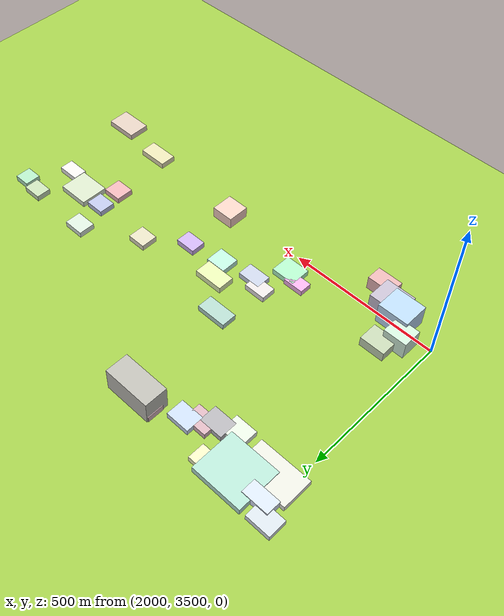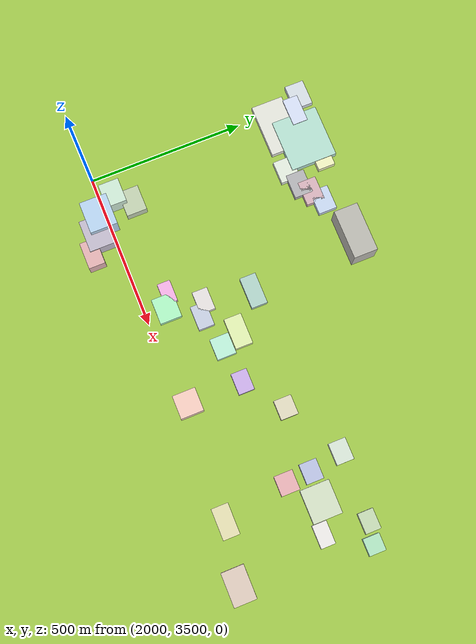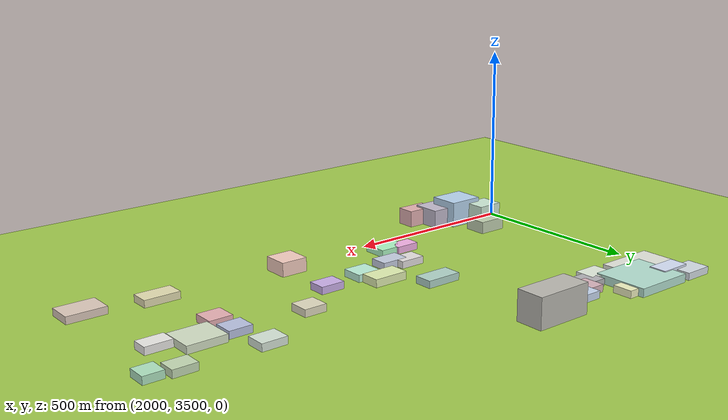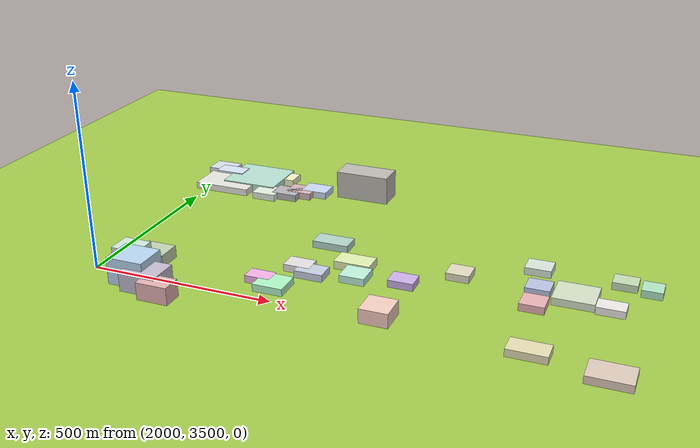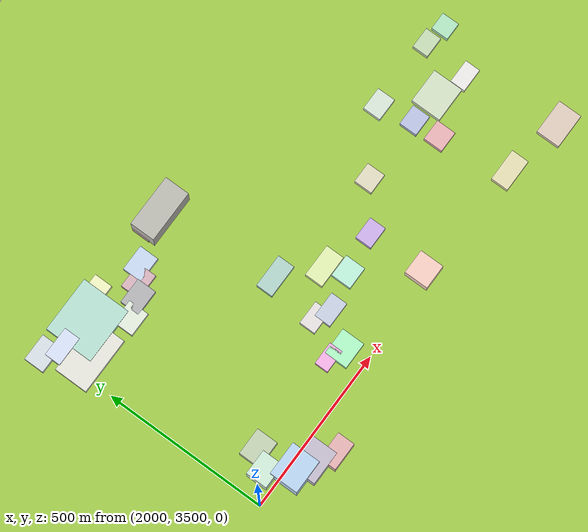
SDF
<sdf version="1.9">
 <world name="city_map">
  <model name="ground_plane">
   <static>1</static>
   <link name="link">
    <collision name="collision">
     <geometry><plane><normal>0 0 1</normal><size>11000 11000</size></plane></geometry>
    </collision>
    <visual name="visual">
     <geometry><plane><normal>0 0 1</normal><size>11000 11000</size></plane></geometry>
     <material>
      <ambient>0.551 0.712 0.210 1</ambient>
      <diffuse>0.651 0.812 0.310 1</diffuse>
      <specular>0.1 0.1 0.05 1</specular>
     </material>
    </visual>
   </link>
  </model>
  <model name="building_284266173">
   <static>1</static>
   <pose>2125.572420813941 4172.171751800805 11.58540077558591 0 0 0</pose>
   <link name="link">
    <collision name="collision">
     <geometry><box><size>169.2633467777734 148.97309999945918 23.17080155117182</size></box></geometry>
    </collision>
    <visual name="visual">
     <cast_shadows>false</cast_shadows>
     <geometry><box><size>169.2633467777734 148.97309999945918 23.17080155117182</size></box></geometry>
     <material>
      <ambient>0.629 0.802 0.742 1</ambient>
      <diffuse>0.729 0.902 0.842 1</diffuse>
      <specular>0.219 0.270 0.253 1</specular>
      <emissive>0.01 0.01 0.01 1</emissive>
     </material>
    </visual>
   </link>
  </model>
  <model name="building_702100110">
   <static>1</static>
   <pose>2053.364790413407 4109.723367642992 10.0 0 0 0</pose>
   <link name="link">
    <collision name="collision">
     <geometry><box><size>171.38454744872334 102.76379999971397 20</size></box></geometry>
    </collision>
    <visual name="visual">
     <cast_shadows>false</cast_shadows>
     <geometry><box><size>171.38454744872334 102.76379999971397 20</size></box></geometry>
     <material>
      <ambient>0.819 0.823 0.786 1</ambient>
      <diffuse>0.919 0.923 0.886 1</diffuse>
      <specular>0.276 0.277 0.266 1</specular>
      <emissive>0.01 0.01 0.01 1</emissive>
     </material>
    </visual>
   </link>
  </model>
  <model name="building_254292448">
   <static>1</static>
   <pose>2478.762335851394 4190.439232062341 40.729888527438476 0 0 0</pose>
   <link name="link">
    <collision name="collision">
     <geometry><box><size>158.18609999985966 76.45900496529083 81.45977705487695</size></box></geometry>
    </collision>
    <visual name="visual">
     <cast_shadows>false</cast_shadows>
     <geometry><box><size>158.18609999985966 76.45900496529083 81.45977705487695</size></box></geometry>
     <material>
      <ambient>0.651 0.645 0.614 1</ambient>
      <diffuse>0.751 0.745 0.714 1</diffuse>
      <specular>0.225 0.223 0.214 1</specular>
      <emissive>0.01 0.01 0.01 1</emissive>
     </material>
    </visual>
   </link>
  </model>
  <model name="building_401690446">
   <static>1</static>
   <pose>3190.5976131831026 3779.7376879083363 10.0 0 0 0</pose>
   <link name="link">
    <collision name="collision">
     <geometry><box><size>105.84959999949461 92.80482700679157 20</size></box></geometry>
    </collision>
    <visual name="visual">
     <cast_shadows>false</cast_shadows>
     <geometry><box><size>105.84959999949461 92.80482700679157 20</size></box></geometry>
     <material>
      <ambient>0.752 0.803 0.697 1</ambient>
      <diffuse>0.852 0.903 0.797 1</diffuse>
      <specular>0.256 0.271 0.239 1</specular>
      <emissive>0.01 0.01 0.01 1</emissive>
     </material>
    </visual>
   </link>
  </model>
  <model name="building_175058334">
   <static>1</static>
   <pose>2131.026050682545 3481.3419130546918 36.713336326694815 0 0 0</pose>
   <link name="link">
    <collision name="collision">
     <geometry><box><size>102.47519999949617 87.43797445727881 73.42667265338963</size></box></geometry>
    </collision>
    <visual name="visual">
     <cast_shadows>false</cast_shadows>
     <geometry><box><size>102.47519999949617 87.43797445727881 73.42667265338963</size></box></geometry>
     <material>
      <ambient>0.641 0.758 0.866 1</ambient>
      <diffuse>0.741 0.858 0.966 1</diffuse>
      <specular>0.222 0.257 0.290 1</specular>
      <emissive>0.01 0.01 0.01 1</emissive>
     </material>
    </visual>
   </link>
  </model>
  <model name="building_783604804">
   <static>1</static>
   <pose>2179.63487689111 3457.0064863760895 26.166622064880798 0 0 0</pose>
   <link name="link">
    <collision name="collision">
     <geometry><box><size>101.94240000036814 83.63844412613756 52.333244129761596</size></box></geometry>
    </collision>
    <visual name="visual">
     <cast_shadows>false</cast_shadows>
     <geometry><box><size>101.94240000036814 83.63844412613756 52.333244129761596</size></box></geometry>
     <material>
      <ambient>0.683 0.652 0.725 1</ambient>
      <diffuse>0.783 0.752 0.825 1</diffuse>
      <specular>0.235 0.226 0.248 1</specular>
      <emissive>0.01 0.01 0.01 1</emissive>
     </material>
    </visual>
   </link>
  </model>
  <model name="building_157431127">
   <static>1</static>
   <pose>3322.934500056801 3463.9114081850757 10.0 0 0 0</pose>
   <link name="link">
    <collision name="collision">
     <geometry><box><size>106.29598627770082 72.24990000040776 20</size></box></geometry>
    </collision>
    <visual name="visual">
     <cast_shadows>false</cast_shadows>
     <geometry><box><size>106.29598627770082 72.24990000040776 20</size></box></geometry>
     <material>
      <ambient>0.791 0.715 0.657 1</ambient>
      <diffuse>0.891 0.815 0.757 1</diffuse>
      <specular>0.267 0.245 0.227 1</specular>
      <emissive>0.01 0.01 0.01 1</emissive>
     </material>
    </visual>
   </link>
  </model>
  <model name="building_342881581">
   <static>1</static>
   <pose>2474.9041811368984 3568.619874581045 10.0 0 0 0</pose>
   <link name="link">
    <collision name="collision">
     <geometry><box><size>81.12990000007159 70.09080791989949 20</size></box></geometry>
    </collision>
    <visual name="visual">
     <cast_shadows>false</cast_shadows>
     <geometry><box><size>81.12990000007159 70.09080791989949 20</size></box></geometry>
     <material>
      <ambient>0.605 0.893 0.691 1</ambient>
      <diffuse>0.705 0.993 0.791 1</diffuse>
      <specular>0.212 0.298 0.237 1</specular>
      <emissive>0.01 0.01 0.01 1</emissive>
     </material>
    </visual>
   </link>
  </model>
  <model name="building_57095839">
   <static>1</static>
   <pose>2624.1989131024716 3745.4214364307627 11.074956299807596 0 0 0</pose>
   <link name="link">
    <collision name="collision">
     <geometry><box><size>98.7986813071119 55.86629999981341 22.14991259961519</size></box></geometry>
    </collision>
    <visual name="visual">
     <cast_shadows>false</cast_shadows>
     <geometry><box><size>98.7986813071119 55.86629999981341 22.14991259961519</size></box></geometry>
     <material>
      <ambient>0.809 0.866 0.616 1</ambient>
      <diffuse>0.909 0.966 0.716 1</diffuse>
      <specular>0.273 0.290 0.215 1</specular>
      <emissive>0.01 0.01 0.01 1</emissive>
     </material>
    </visual>
   </link>
  </model>
  <model name="building_377931938">
   <static>1</static>
   <pose>2774.096038616983 3522.145801163167 19.302680850532298 0 0 0</pose>
   <link name="link">
    <collision name="collision">
     <geometry><box><size>74.43659999993457 73.35149999045115 38.605361701064595</size></box></geometry>
    </collision>
    <visual name="visual">
     <cast_shadows>false</cast_shadows>
     <geometry><box><size>74.43659999993457 73.35149999045115 38.605361701064595</size></box></geometry>
     <material>
      <ambient>0.889 0.730 0.676 1</ambient>
      <diffuse>0.989 0.830 0.776 1</diffuse>
      <specular>0.297 0.249 0.233 1</specular>
      <emissive>0.01 0.01 0.01 1</emissive>
     </material>
    </visual>
   </link>
  </model>
  <model name="building_577528955">
   <static>1</static>
   <pose>2119.0812866284136 3593.784129076756 17.058117848532092 0 0 0</pose>
   <link name="link">
    <collision name="collision">
     <geometry><box><size>82.59010013096355 65.24579999979352 34.116235697064184</size></box></geometry>
    </collision>
    <visual name="visual">
     <cast_shadows>false</cast_shadows>
     <geometry><box><size>82.59010013096355 65.24579999979352 34.116235697064184</size></box></geometry>
     <material>
      <ambient>0.680 0.741 0.615 1</ambient>
      <diffuse>0.780 0.841 0.715 1</diffuse>
      <specular>0.234 0.252 0.215 1</specular>
      <emissive>0.01 0.01 0.01 1</emissive>
     </material>
    </visual>
   </link>
  </model>
  <model name="building_510950007">
   <static>1</static>
   <pose>3138.1748611579314 3496.523078401026 10.0 0 0 0</pose>
   <link name="link">
    <collision name="collision">
     <geometry><box><size>98.3571000002712 53.657247429474914 20</size></box></geometry>
    </collision>
    <visual name="visual">
     <cast_shadows>false</cast_shadows>
     <geometry><box><size>98.3571000002712 53.657247429474914 20</size></box></geometry>
     <material>
      <ambient>0.816 0.792 0.619 1</ambient>
      <diffuse>0.916 0.892 0.719 1</diffuse>
      <specular>0.275 0.268 0.216 1</specular>
      <emissive>0.01 0.01 0.01 1</emissive>
     </material>
    </visual>
   </link>
  </model>
  <model name="building_447361698">
   <static>1</static>
   <pose>2523.5997115122077 3836.7564809865153 10.0 0 0 0</pose>
   <link name="link">
    <collision name="collision">
     <geometry><box><size>100.75401072544118 52.00349999962839 20</size></box></geometry>
    </collision>
    <visual name="visual">
     <cast_shadows>false</cast_shadows>
     <geometry><box><size>100.75401072544118 52.00349999962839 20</size></box></geometry>
     <material>
      <ambient>0.613 0.752 0.709 1</ambient>
      <diffuse>0.713 0.852 0.809 1</diffuse>
      <specular>0.214 0.256 0.243 1</specular>
      <emissive>0.01 0.01 0.01 1</emissive>
     </material>
    </visual>
   </link>
  </model>
  <model name="building_222541133">
   <static>1</static>
   <pose>1982.2629701445999 4214.332197798428 10.0 0 0 0</pose>
   <link name="link">
    <collision name="collision">
     <geometry><box><size>81.74964290148124 61.31639999961891 20</size></box></geometry>
    </collision>
    <visual name="visual">
     <cast_shadows>false</cast_shadows>
     <geometry><box><size>81.74964290148124 61.31639999961891 20</size></box></geometry>
     <material>
      <ambient>0.759 0.795 0.821 1</ambient>
      <diffuse>0.859 0.895 0.921 1</diffuse>
      <specular>0.258 0.268 0.276 1</specular>
      <emissive>0.01 0.01 0.01 1</emissive>
     </material>
    </visual>
   </link>
  </model>
  <model name="building_141488552">
   <static>1</static>
   <pose>2081.422870513216 3544.22396451146 30.506493203669564 0 0 0</pose>
   <link name="link">
    <collision name="collision">
     <geometry><box><size>76.5300422357553 65.36790000043169 61.01298640733913</size></box></geometry>
    </collision>
    <visual name="visual">
     <cast_shadows>false</cast_shadows>
     <geometry><box><size>76.5300422357553 65.36790000043169 61.01298640733913</size></box></geometry>
     <material>
      <ambient>0.728 0.842 0.763 1</ambient>
      <diffuse>0.828 0.942 0.863 1</diffuse>
      <specular>0.248 0.283 0.259 1</specular>
      <emissive>0.01 0.01 0.01 1</emissive>
     </material>
    </visual>
   </link>
  </model>
  <model name="building_200823634">
   <static>1</static>
   <pose>2258.185621503622 4101.002328562887 10.0 0 0 0</pose>
   <link name="link">
    <collision name="collision">
     <geometry><box><size>77.66669999982412 59.42067598552535 20</size></box></geometry>
    </collision>
    <visual name="visual">
     <cast_shadows>false</cast_shadows>
     <geometry><box><size>77.66669999982412 59.42067598552535 20</size></box></geometry>
     <material>
      <ambient>0.623 0.620 0.636 1</ambient>
      <diffuse>0.723 0.720 0.736 1</diffuse>
      <specular>0.217 0.216 0.221 1</specular>
      <emissive>0.01 0.01 0.01 1</emissive>
     </material>
    </visual>
   </link>
  </model>
  <model name="building_290192033">
   <static>1</static>
   <pose>2334.413838752166 4150.224986741224 10.0 0 0 0</pose>
   <link name="link">
    <collision name="collision">
     <geometry><box><size>77.76660000020286 59.16361284319508 20</size></box></geometry>
    </collision>
    <visual name="visual">
     <cast_shadows>false</cast_shadows>
     <geometry><box><size>77.76660000020286 59.16361284319508 20</size></box></geometry>
     <material>
      <ambient>0.705 0.770 0.868 1</ambient>
      <diffuse>0.805 0.870 0.968 1</diffuse>
      <specular>0.241 0.261 0.290 1</specular>
      <emissive>0.01 0.01 0.01 1</emissive>
     </material>
    </visual>
   </link>
  </model>
  <model name="building_400820621">
   <static>1</static>
   <pose>2293.7073225724052 4126.452623372686 10.0 0 0 0</pose>
   <link name="link">
    <collision name="collision">
     <geometry><box><size>77.6556000004831 58.779260984973334 20</size></box></geometry>
    </collision>
    <visual name="visual">
     <cast_shadows>false</cast_shadows>
     <geometry><box><size>77.6556000004831 58.779260984973334 20</size></box></geometry>
     <material>
      <ambient>0.767 0.623 0.659 1</ambient>
      <diffuse>0.867 0.723 0.759 1</diffuse>
      <specular>0.260 0.217 0.228 1</specular>
      <emissive>0.01 0.01 0.01 1</emissive>
     </material>
    </visual>
   </link>
  </model>
  <model name="building_515811">
   <static>1</static>
   <pose>2199.9940835159 4081.924244348791 10.0 0 0 0</pose>
   <link name="link">
    <collision name="collision">
     <geometry><box><size>72.87060820744281 62.25990000039161 20</size></box></geometry>
    </collision>
    <visual name="visual">
     <cast_shadows>false</cast_shadows>
     <geometry><box><size>72.87060820744281 62.25990000039161 20</size></box></geometry>
     <material>
      <ambient>0.813 0.851 0.795 1</ambient>
      <diffuse>0.913 0.951 0.895 1</diffuse>
      <specular>0.274 0.285 0.269 1</specular>
      <emissive>0.01 0.01 0.01 1</emissive>
     </material>
    </visual>
   </link>
  </model>
  <model name="building_218861892">
   <static>1</static>
   <pose>2235.551870170946 3419.1316874441936 23.76255874517714 0 0 0</pose>
   <link name="link">
    <collision name="collision">
     <geometry><box><size>85.30349999994513 52.409316520844584 47.52511749035428</size></box></geometry>
    </collision>
    <visual name="visual">
     <cast_shadows>false</cast_shadows>
     <geometry><box><size>85.30349999994513 52.409316520844584 47.52511749035428</size></box></geometry>
     <material>
      <ambient>0.814 0.617 0.620 1</ambient>
      <diffuse>0.914 0.717 0.720 1</diffuse>
      <specular>0.274 0.215 0.216 1</specular>
      <emissive>0.01 0.01 0.01 1</emissive>
     </material>
    </visual>
   </link>
  </model>
  <model name="building_805247655">
   <static>1</static>
   <pose>2027.9447186254636 4182.454381340402 12.909317947579325 0 0 0</pose>
   <link name="link">
    <collision name="collision">
     <geometry><box><size>88.89990000017178 48.93255715770731 25.81863589515865</size></box></geometry>
    </collision>
    <visual name="visual">
     <cast_shadows>false</cast_shadows>
     <geometry><box><size>88.89990000017178 48.93255715770731 25.81863589515865</size></box></geometry>
     <material>
      <ambient>0.765 0.805 0.893 1</ambient>
      <diffuse>0.865 0.905 0.993 1</diffuse>
      <specular>0.259 0.272 0.298 1</specular>
      <emissive>0.01 0.01 0.01 1</emissive>
     </material>
    </visual>
   </link>
  </model>
  <model name="building_277669709">
   <static>1</static>
   <pose>2649.9121730963566 3684.613863754991 10.0 0 0 0</pose>
   <link name="link">
    <collision name="collision">
     <geometry><box><size>67.77436970029582 61.494000000116955 20</size></box></geometry>
    </collision>
    <visual name="visual">
     <cast_shadows>false</cast_shadows>
     <geometry><box><size>67.77436970029582 61.494000000116955 20</size></box></geometry>
     <material>
      <ambient>0.659 0.866 0.776 1</ambient>
      <diffuse>0.759 0.966 0.876 1</diffuse>
      <specular>0.228 0.290 0.263 1</specular>
      <emissive>0.01 0.01 0.01 1</emissive>
     </material>
    </visual>
   </link>
  </model>
  <model name="building_390818738">
   <static>1</static>
   <pose>2433.421180259222 4197.7577997334765 10.5 0 0 0</pose>
   <link name="link">
    <collision name="collision">
     <geometry><box><size>72.15000000002902 54.49997398136824 21.0</size></box></geometry>
    </collision>
    <visual name="visual">
     <cast_shadows>false</cast_shadows>
     <geometry><box><size>72.15000000002902 54.49997398136824 21.0</size></box></geometry>
     <material>
      <ambient>0.750 0.627 0.655 1</ambient>
      <diffuse>0.850 0.727 0.755 1</diffuse>
      <specular>0.255 0.218 0.227 1</specular>
      <emissive>0.01 0.01 0.01 1</emissive>
     </material>
    </visual>
   </link>
  </model>
  <model name="building_32023113">
   <static>1</static>
   <pose>2538.4718326539505 3661.217295916721 10.0 0 0 0</pose>
   <link name="link">
    <collision name="collision">
     <geometry><box><size>77.26398285802975 50.760299999296876 20</size></box></geometry>
    </collision>
    <visual name="visual">
     <cast_shadows>false</cast_shadows>
     <geometry><box><size>77.26398285802975 50.760299999296876 20</size></box></geometry>
     <material>
      <ambient>0.700 0.733 0.808 1</ambient>
      <diffuse>0.800 0.833 0.908 1</diffuse>
      <specular>0.240 0.250 0.272 1</specular>
      <emissive>0.01 0.01 0.01 1</emissive>
     </material>
    </visual>
   </link>
  </model>
  <model name="building_755511394">
   <static>1</static>
   <pose>3076.535915399153 3892.6007970460937 10.0 0 0 0</pose>
   <link name="link">
    <collision name="collision">
     <geometry><box><size>69.14190000036768 55.002806541515874 20</size></box></geometry>
    </collision>
    <visual name="visual">
     <cast_shadows>false</cast_shadows>
     <geometry><box><size>69.14190000036768 55.002806541515874 20</size></box></geometry>
     <material>
      <ambient>0.765 0.823 0.766 1</ambient>
      <diffuse>0.865 0.923 0.866 1</diffuse>
      <specular>0.260 0.277 0.260 1</specular>
      <emissive>0.01 0.01 0.01 1</emissive>
     </material>
    </visual>
   </link>
  </model>
  <model name="building_117033771">
   <static>1</static>
   <pose>2204.4679169235014 4203.328983258389 10.0 0 0 0</pose>
   <link name="link">
    <collision name="collision">
     <geometry><box><size>69.01980000051822 55.09364493585037 20</size></box></geometry>
    </collision>
    <visual name="visual">
     <cast_shadows>false</cast_shadows>
     <geometry><box><size>69.01980000051822 55.09364493585037 20</size></box></geometry>
     <material>
      <ambient>0.869 0.877 0.678 1</ambient>
      <diffuse>0.969 0.977 0.778 1</diffuse>
      <specular>0.291 0.293 0.233 1</specular>
      <emissive>0.01 0.01 0.01 1</emissive>
     </material>
    </visual>
   </link>
  </model>
  <model name="building_398339669">
   <static>1</static>
   <pose>3102.347843466012 3706.9612144968087 10.0 0 0 0</pose>
   <link name="link">
    <collision name="collision">
     <geometry><box><size>63.40319999955568 59.182358209337536 20</size></box></geometry>
    </collision>
    <visual name="visual">
     <cast_shadows>false</cast_shadows>
     <geometry><box><size>63.40319999955568 59.182358209337536 20</size></box></geometry>
     <material>
      <ambient>0.832 0.613 0.629 1</ambient>
      <diffuse>0.932 0.713 0.729 1</diffuse>
      <specular>0.280 0.214 0.219 1</specular>
      <emissive>0.01 0.01 0.01 1</emissive>
     </material>
    </visual>
   </link>
  </model>
  <model name="building_418178190">
   <static>1</static>
   <pose>2495.6341991605937 3682.7395794010263 10.0 0 0 0</pose>
   <link name="link">
    <collision name="collision">
     <geometry><box><size>71.99459999979041 49.005180827108326 20</size></box></geometry>
    </collision>
    <visual name="visual">
     <cast_shadows>false</cast_shadows>
     <geometry><box><size>71.99459999979041 49.005180827108326 20</size></box></geometry>
     <material>
      <ambient>0.822 0.803 0.800 1</ambient>
      <diffuse>0.922 0.903 0.900 1</diffuse>
      <specular>0.277 0.271 0.270 1</specular>
      <emissive>0.01 0.01 0.01 1</emissive>
     </material>
    </visual>
   </link>
  </model>
  <model name="building_233564812">
   <static>1</static>
   <pose>3097.8195516176957 3787.377037961279 10.0 0 0 0</pose>
   <link name="link">
    <collision name="collision">
     <geometry><box><size>63.527727441330526 54.90060000035868 20</size></box></geometry>
    </collision>
    <visual name="visual">
     <cast_shadows>false</cast_shadows>
     <geometry><box><size>63.527727441330526 54.90060000035868 20</size></box></geometry>
     <material>
      <ambient>0.648 0.681 0.810 1</ambient>
      <diffuse>0.748 0.781 0.910 1</diffuse>
      <specular>0.224 0.234 0.273 1</specular>
      <emissive>0.01 0.01 0.01 1</emissive>
     </material>
    </visual>
   </link>
  </model>
  <model name="building_827644247">
   <static>1</static>
   <pose>2893.5854008619926 3790.952263726835 10.0 0 0 0</pose>
   <link name="link">
    <collision name="collision">
     <geometry><box><size>62.11040234700051 55.921800000461985 20</size></box></geometry>
    </collision>
    <visual name="visual">
     <cast_shadows>false</cast_shadows>
     <geometry><box><size>62.11040234700051 55.921800000461985 20</size></box></geometry>
     <material>
      <ambient>0.801 0.780 0.672 1</ambient>
      <diffuse>0.901 0.880 0.772 1</diffuse>
      <specular>0.270 0.264 0.232 1</specular>
      <emissive>0.01 0.01 0.01 1</emissive>
     </material>
    </visual>
   </link>
  </model>
  <model name="building_625985597">
   <static>1</static>
   <pose>2772.5253511753704 3699.439324474725 10.0 0 0 0</pose>
   <link name="link">
    <collision name="collision">
     <geometry><box><size>67.89870000003617 50.617964220577754 20</size></box></geometry>
    </collision>
    <visual name="visual">
     <cast_shadows>false</cast_shadows>
     <geometry><box><size>67.89870000003617 50.617964220577754 20</size></box></geometry>
     <material>
      <ambient>0.717 0.609 0.840 1</ambient>
      <diffuse>0.817 0.709 0.940 1</diffuse>
      <specular>0.245 0.213 0.282 1</specular>
      <emissive>0.01 0.01 0.01 1</emissive>
     </material>
    </visual>
   </link>
  </model>
  <model name="building_132411417">
   <static>1</static>
   <pose>3280.8196718193553 3749.493235330006 10.0 0 0 0</pose>
   <link name="link">
    <collision name="collision">
     <geometry><box><size>71.95779130445976 46.00949999977644 20</size></box></geometry>
    </collision>
    <visual name="visual">
     <cast_shadows>false</cast_shadows>
     <geometry><box><size>71.95779130445976 46.00949999977644 20</size></box></geometry>
     <material>
      <ambient>0.848 0.841 0.829 1</ambient>
      <diffuse>0.948 0.941 0.929 1</diffuse>
      <specular>0.285 0.282 0.279 1</specular>
      <emissive>0.01 0.01 0.01 1</emissive>
     </material>
    </visual>
   </link>
  </model>
  <model name="building_298341874">
   <static>1</static>
   <pose>3294.7518839933227 3889.197923415294 10.0 0 0 0</pose>
   <link name="link">
    <collision name="collision">
     <geometry><box><size>63.50622397420644 49.073100000086356 20</size></box></geometry>
    </collision>
    <visual name="visual">
     <cast_shadows>false</cast_shadows>
     <geometry><box><size>63.50622397420644 49.073100000086356 20</size></box></geometry>
     <material>
      <ambient>0.691 0.777 0.626 1</ambient>
      <diffuse>0.791 0.877 0.726 1</diffuse>
      <specular>0.237 0.263 0.218 1</specular>
      <emissive>0.01 0.01 0.01 1</emissive>
     </material>
    </visual>
   </link>
  </model>
  <model name="building_760018549">
   <static>1</static>
   <pose>2429.9418256256413 3588.523973644855 10.0 0 0 0</pose>
   <link name="link">
    <collision name="collision">
     <geometry><box><size>68.58690000019152 41.66287302063991 20</size></box></geometry>
    </collision>
    <visual name="visual">
     <cast_shadows>false</cast_shadows>
     <geometry><box><size>68.58690000019152 41.66287302063991 20</size></box></geometry>
     <material>
      <ambient>0.883 0.612 0.824 1</ambient>
      <diffuse>0.983 0.712 0.924 1</diffuse>
      <specular>0.295 0.214 0.277 1</specular>
      <emissive>0.01 0.01 0.01 1</emissive>
     </material>
    </visual>
   </link>
  </model>
  <model name="building_346083606">
   <static>1</static>
   <pose>3362.235998858679 3876.03619472425 10.0 0 0 0</pose>
   <link name="link">
    <collision name="collision">
     <geometry><box><size>53.19415220951493 52.80269999950349 20</size></box></geometry>
    </collision>
    <visual name="visual">
     <cast_shadows>false</cast_shadows>
     <geometry><box><size>53.19415220951493 52.80269999950349 20</size></box></geometry>
     <material>
      <ambient>0.608 0.819 0.678 1</ambient>
      <diffuse>0.708 0.919 0.778 1</diffuse>
      <specular>0.212 0.276 0.233 1</specular>
      <emissive>0.01 0.01 0.01 1</emissive>
     </material>
    </visual>
   </link>
  </model>
 </world>
</sdf>
